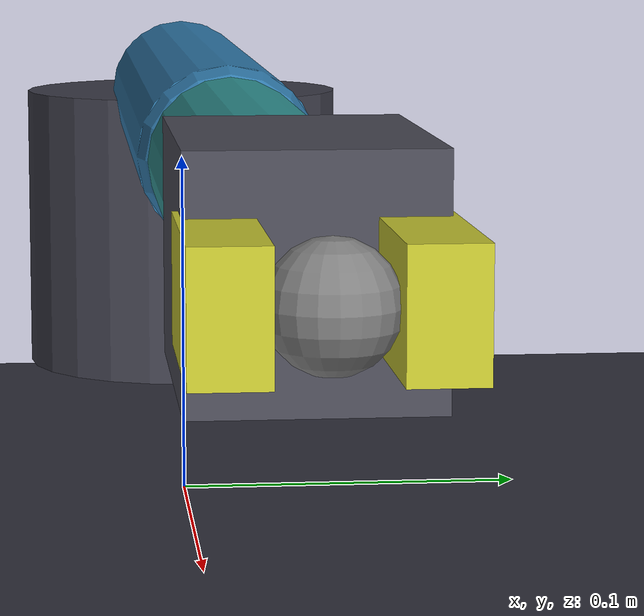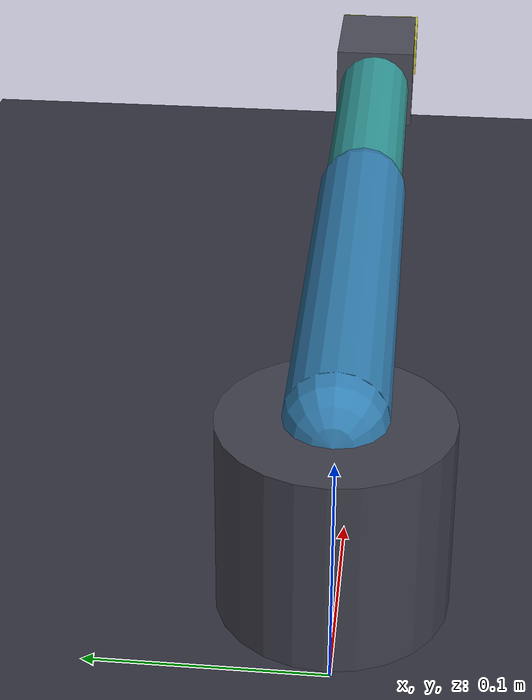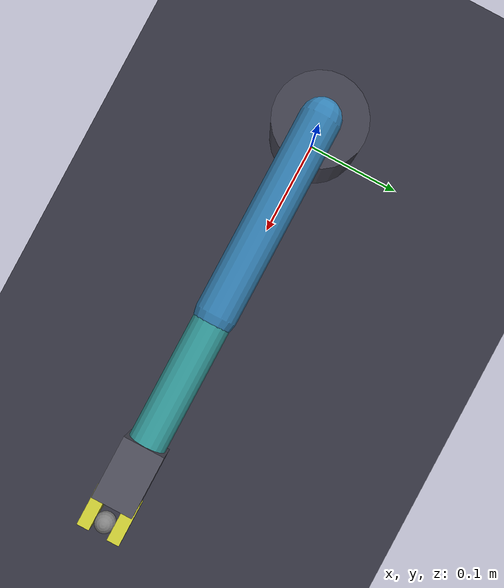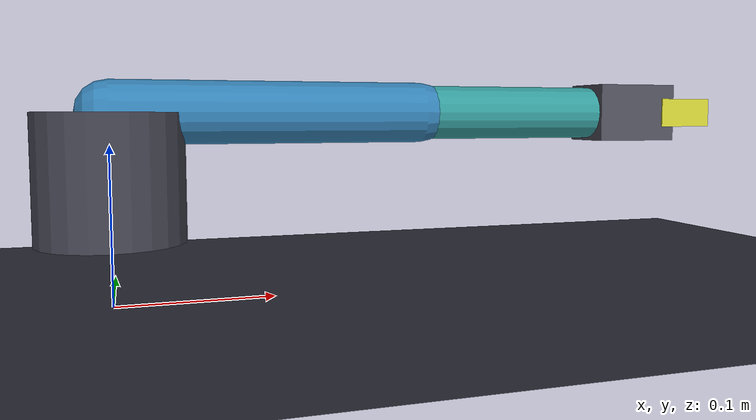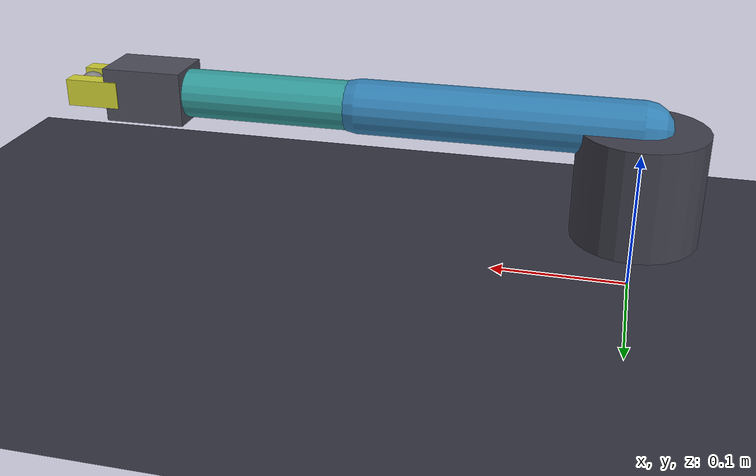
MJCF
<mujoco model="arm_gripper">
  <compiler angle="radian" autolimits="true"/>
  <option timestep="0.002" gravity="0 0 -9.81"/>
  <worldbody>
    <light pos="0 0 2" dir="0 0 -1"/>
    <geom name="floor" type="plane" size="2 2 0.05" rgba="0.2 0.2 0.25 1"/>
    <body name="base" pos="0 0 0.08">
      <geom type="cylinder" size="0.045 0.04" rgba="0.25 0.25 0.3 1" mass="0.5"/>
      <body name="link1" pos="0 0 0.04">
        <joint name="joint1" type="hinge" axis="0 0 1" range="-1.8 1.8" damping="0.5"/>
        <geom type="capsule" fromto="0 0 0 0.2 0 0" size="0.02" rgba="0.2 0.5 0.7 1" mass="0.35"/>
        <body name="link2" pos="0.2 0 0">
          <joint name="joint2" type="hinge" axis="0 0 1" range="-2.0 2.0" damping="0.4"/>
          <geom type="capsule" fromto="0 0 0 0.16 0 0" size="0.018" rgba="0.2 0.6 0.6 1" mass="0.25"/>
          <body name="wrist" pos="0.16 0 0">
            <joint name="joint3" type="hinge" axis="0 0 1" range="-2.0 2.0" damping="0.25"/>
            <geom type="box" size="0.03 0.02 0.02" rgba="0.3 0.3 0.35 1" mass="0.12"/>
            <site name="ee" pos="0.05 0 0" size="0.01"/>
            <camera name="wrist_cam" pos="0.02 -0.08 0.06" xyaxes="1 0 0 0 0.4 1"/>
            <body name="finger_l" pos="0.04 0.015 0">
              <joint name="finger_l" type="slide" axis="0 1 0" range="0 0.03" damping="0.8"/>
              <geom type="box" size="0.02 0.006 0.01" rgba="0.8 0.8 0.2 1" mass="0.03"/>
            </body>
            <body name="finger_r" pos="0.04 -0.015 0">
              <joint name="finger_r" type="slide" axis="0 -1 0" range="0 0.03" damping="0.8"/>
              <geom type="box" size="0.02 0.006 0.01" rgba="0.8 0.8 0.2 1" mass="0.03"/>
            </body>
          </body>
        </body>
      </body>
    </body>
  </worldbody>
  <contact>
    <exclude body1="base" body2="link1"/>
    <exclude body1="link1" body2="link2"/>
    <exclude body1="link2" body2="wrist"/>
    <exclude body1="wrist" body2="finger_l"/>
    <exclude body1="wrist" body2="finger_r"/>
  </contact>
  <actuator>
    <position name="act1" joint="joint1" kp="40" ctrlrange="-1.8 1.8" forcerange="-12 12"/>
    <position name="act2" joint="joint2" kp="30" ctrlrange="-2.0 2.0" forcerange="-8 8"/>
    <position name="act3" joint="joint3" kp="20" ctrlrange="-2.0 2.0" forcerange="-4 4"/>
    <position name="grip_l" joint="finger_l" kp="80" ctrlrange="0 0.03" forcerange="-2 2"/>
    <position name="grip_r" joint="finger_r" kp="80" ctrlrange="0 0.03" forcerange="-2 2"/>
  </actuator>
</mujoco>
